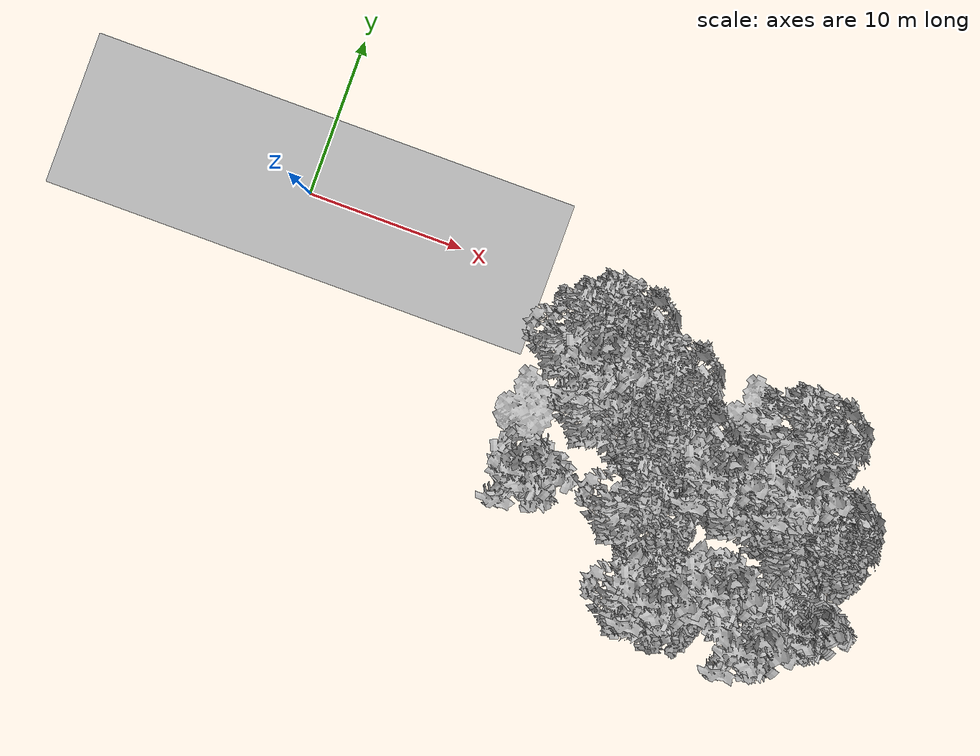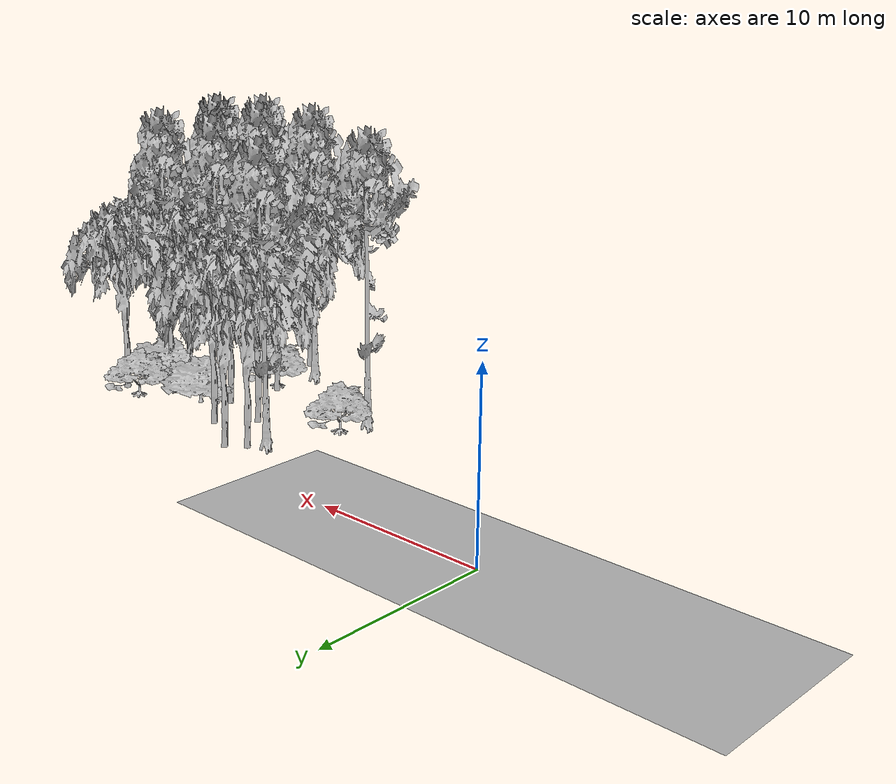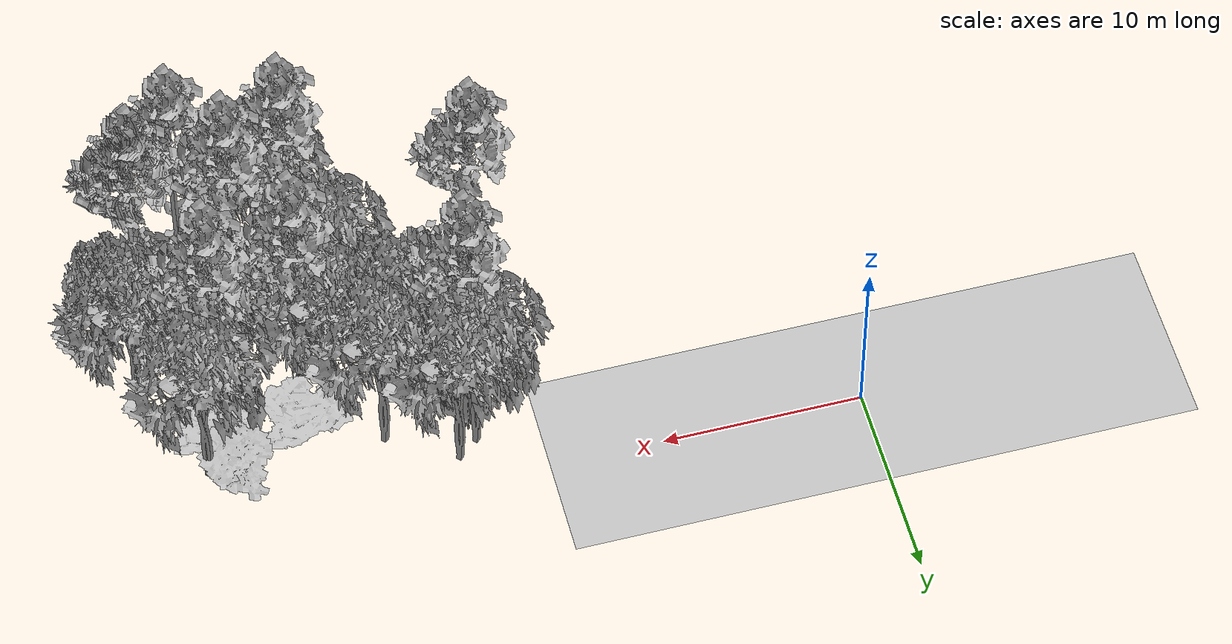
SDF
<sdf version="1.7">
 <world name="default">
  <model name="ground_plane">
   <static>1</static>
   <link name="link">
    <collision name="collision">
     <pose>-50 0 0 0 -0 0</pose>
     <geometry><plane><normal>0 0 1</normal><size>100 100</size></plane></geometry>
     <surface><contact><ode><min_depth>0.01</min_depth><max_vel>0</max_vel></ode></contact></surface>
    </collision>
    <visual name="grass">
     <cast_shadows>0</cast_shadows>
     <geometry>
      <mesh>
       <scale>0.5814285714285714 0.18142857142857144 0.1</scale>
       <uri>file://grass_plane/meshes/grass_plane.dae</uri>
      </mesh>
     </geometry>
    </visual>
   </link>
  </model>
  <model name="Tree 15">
   <static>1</static>
   <pose>32.99031036902194 -12.858967480910888 0 1.57079 -0 0</pose>
   <link name="link">
    <collision name="collision">
     <geometry><mesh><scale>3.5 5 3.5</scale><uri>model://tree_9/meshes/tree_9.obj</uri></mesh></geometry>
    </collision>
    <visual name="visual">
     <geometry><mesh><scale>3.5 5 3.5</scale><uri>model://tree_9/meshes/tree_9.obj</uri></mesh></geometry>
    </visual>
   </link>
  </model>
  <model name="Tree 29">
   <static>1</static>
   <pose>17.025539076455686 -10.248897731775358 0 1.57079 -0 0</pose>
   <link name="link">
    <collision name="collision">
     <geometry><mesh><scale>3.5 5 3.5</scale><uri>model://tree_9/meshes/tree_9.obj</uri></mesh></geometry>
    </collision>
    <visual name="visual">
     <geometry><mesh><scale>3.5 5 3.5</scale><uri>model://tree_9/meshes/tree_9.obj</uri></mesh></geometry>
    </visual>
   </link>
  </model>
  <model name="Tree 42">
   <static>1</static>
   <pose>24.586458142823574 -10.07568651474531 0 1.57079 -0 0</pose>
   <link name="link">
    <collision name="collision">
     <geometry><mesh><scale>3.5 5 3.5</scale><uri>model://tree_2/meshes/tree_2.obj</uri></mesh></geometry>
    </collision>
    <visual name="visual">
     <geometry><mesh><scale>3.5 5 3.5</scale><uri>model://tree_2/meshes/tree_2.obj</uri></mesh></geometry>
    </visual>
   </link>
  </model>
  <model name="Tree 68">
   <static>1</static>
   <pose>22.958480714063455 -3.6892372770026753 0 1.57079 -0 0</pose>
   <link name="link">
    <collision name="collision">
     <geometry><mesh><scale>3.5 5 3.5</scale><uri>model://tree_2/meshes/tree_2.obj</uri></mesh></geometry>
    </collision>
    <visual name="visual">
     <geometry><mesh><scale>3.5 5 3.5</scale><uri>model://tree_2/meshes/tree_2.obj</uri></mesh></geometry>
    </visual>
   </link>
  </model>
  <model name="Tree 70">
   <static>1</static>
   <pose>21.307075548587832 -5.617983215033691 0 1.57079 -0 0</pose>
   <link name="link">
    <collision name="collision">
     <geometry><mesh><scale>3.5 5 3.5</scale><uri>model://tree_2/meshes/tree_2.obj</uri></mesh></geometry>
    </collision>
    <visual name="visual">
     <geometry><mesh><scale>3.5 5 3.5</scale><uri>model://tree_2/meshes/tree_2.obj</uri></mesh></geometry>
    </visual>
   </link>
  </model>
  <model name="Tree 72">
   <static>1</static>
   <pose>26.60149503507195 -14.764750564844793 0 1.57079 -0 0</pose>
   <link name="link">
    <collision name="collision">
     <geometry><mesh><scale>3.5 5 3.5</scale><uri>model://tree_2/meshes/tree_2.obj</uri></mesh></geometry>
    </collision>
    <visual name="visual">
     <geometry><mesh><scale>3.5 5 3.5</scale><uri>model://tree_2/meshes/tree_2.obj</uri></mesh></geometry>
    </visual>
   </link>
  </model>
  <model name="Tree 78">
   <static>1</static>
   <pose>16.857552756799066 -7.826301322635484 0 1.57079 -0 0</pose>
   <link name="link">
    <collision name="collision">
     <geometry><mesh><scale>4 2.5 4</scale><uri>model://tree_1/meshes/tree_1.obj</uri></mesh></geometry>
    </collision>
    <visual name="visual">
     <geometry><mesh><scale>4 2.5 4</scale><uri>model://tree_1/meshes/tree_1.obj</uri></mesh></geometry>
    </visual>
   </link>
  </model>
  <model name="Tree 80">
   <static>1</static>
   <pose>30.657653075249215 -14.694272490432668 0 1.57079 -0 0</pose>
   <link name="link">
    <collision name="collision">
     <geometry><mesh><scale>3.5 5 3.5</scale><uri>model://tree_9/meshes/tree_9.obj</uri></mesh></geometry>
    </collision>
    <visual name="visual">
     <geometry><mesh><scale>3.5 5 3.5</scale><uri>model://tree_9/meshes/tree_9.obj</uri></mesh></geometry>
    </visual>
   </link>
  </model>
  <model name="Tree 86">
   <static>1</static>
   <pose>28.426271946371784 -12.470410275021372 0 1.57079 -0 0</pose>
   <link name="link">
    <collision name="collision">
     <geometry><mesh><scale>3.5 5 3.5</scale><uri>model://tree_9/meshes/tree_9.obj</uri></mesh></geometry>
    </collision>
    <visual name="visual">
     <geometry><mesh><scale>3.5 5 3.5</scale><uri>model://tree_9/meshes/tree_9.obj</uri></mesh></geometry>
    </visual>
   </link>
  </model>
  <model name="Tree 113">
   <static>1</static>
   <pose>33.92952750416178 -8.393287061765783 0 1.57079 -0 0</pose>
   <link name="link">
    <collision name="collision">
     <geometry><mesh><scale>3.5 5 3.5</scale><uri>model://tree_2/meshes/tree_2.obj</uri></mesh></geometry>
    </collision>
    <visual name="visual">
     <geometry><mesh><scale>3.5 5 3.5</scale><uri>model://tree_2/meshes/tree_2.obj</uri></mesh></geometry>
    </visual>
   </link>
  </model>
  <model name="Tree 116">
   <static>1</static>
   <pose>24.857501739719567 -6.556314997574528 0 1.57079 -0 0</pose>
   <link name="link">
    <collision name="collision">
     <geometry><mesh><scale>3.5 5 3.5</scale><uri>model://tree_2/meshes/tree_2.obj</uri></mesh></geometry>
    </collision>
    <visual name="visual">
     <geometry><mesh><scale>3.5 5 3.5</scale><uri>model://tree_2/meshes/tree_2.obj</uri></mesh></geometry>
    </visual>
   </link>
  </model>
  <model name="Tree 124">
   <static>1</static>
   <pose>30.260906636792598 -7.725980265467234 0 1.57079 -0 0</pose>
   <link name="link">
    <collision name="collision">
     <geometry><mesh><scale>3.5 5 3.5</scale><uri>model://tree_2/meshes/tree_2.obj</uri></mesh></geometry>
    </collision>
    <visual name="visual">
     <geometry><mesh><scale>3.5 5 3.5</scale><uri>model://tree_2/meshes/tree_2.obj</uri></mesh></geometry>
    </visual>
   </link>
  </model>
  <model name="Tree 132">
   <static>1</static>
   <pose>31.05764530852707 -6.382612291707616 0 1.57079 -0 0</pose>
   <link name="link">
    <collision name="collision">
     <geometry><mesh><scale>3 2 3</scale><uri>model://tree_3/meshes/tree_3.obj</uri></mesh></geometry>
    </collision>
    <visual name="visual">
     <geometry><mesh><scale>3 2 3</scale><uri>model://tree_3/meshes/tree_3.obj</uri></mesh></geometry>
    </visual>
   </link>
  </model>
  <model name="Tree 146">
   <static>1</static>
   <pose>25.25601575110325 -10.617370271039839 0 1.57079 -0 0</pose>
   <link name="link">
    <collision name="collision">
     <geometry><mesh><scale>4 2.5 4</scale><uri>model://tree_1/meshes/tree_1.obj</uri></mesh></geometry>
    </collision>
    <visual name="visual">
     <geometry><mesh><scale>4 2.5 4</scale><uri>model://tree_1/meshes/tree_1.obj</uri></mesh></geometry>
    </visual>
   </link>
  </model>
  <model name="Tree 157">
   <static>1</static>
   <pose>25.42692789547347 -14.001678038859268 0 1.57079 -0 0</pose>
   <link name="link">
    <collision name="collision">
     <geometry><mesh><scale>3.5 5 3.5</scale><uri>model://tree_9/meshes/tree_9.obj</uri></mesh></geometry>
    </collision>
    <visual name="visual">
     <geometry><mesh><scale>3.5 5 3.5</scale><uri>model://tree_9/meshes/tree_9.obj</uri></mesh></geometry>
    </visual>
   </link>
  </model>
  <model name="Tree 158">
   <static>1</static>
   <pose>30.610736908104485 -6.527508034286463 0 1.57079 -0 0</pose>
   <link name="link">
    <collision name="collision">
     <geometry><mesh><scale>3.5 5 3.5</scale><uri>model://tree_9/meshes/tree_9.obj</uri></mesh></geometry>
    </collision>
    <visual name="visual">
     <geometry><mesh><scale>3.5 5 3.5</scale><uri>model://tree_9/meshes/tree_9.obj</uri></mesh></geometry>
    </visual>
   </link>
  </model>
  <model name="Tree 161">
   <static>1</static>
   <pose>18.818499576998548 -3.946568357578716 0 1.57079 -0 0</pose>
   <link name="link">
    <collision name="collision">
     <geometry><mesh><scale>3.5 5 3.5</scale><uri>model://tree_9/meshes/tree_9.obj</uri></mesh></geometry>
    </collision>
    <visual name="visual">
     <geometry><mesh><scale>3.5 5 3.5</scale><uri>model://tree_9/meshes/tree_9.obj</uri></mesh></geometry>
    </visual>
   </link>
  </model>
  <model name="Tree 180">
   <static>1</static>
   <pose>18.673477747850455 -2.5115957191651006 0 1.57079 -0 0</pose>
   <link name="link">
    <collision name="collision">
     <geometry><mesh><scale>3.5 5 3.5</scale><uri>model://tree_2/meshes/tree_2.obj</uri></mesh></geometry>
    </collision>
    <visual name="visual">
     <geometry><mesh><scale>3.5 5 3.5</scale><uri>model://tree_2/meshes/tree_2.obj</uri></mesh></geometry>
    </visual>
   </link>
  </model>
  <model name="Tree 213">
   <static>1</static>
   <pose>26.4207236500677 -7.135309716715211 0 1.57079 -0 0</pose>
   <link name="link">
    <collision name="collision">
     <geometry><mesh><scale>3.5 5 3.5</scale><uri>model://tree_9/meshes/tree_9.obj</uri></mesh></geometry>
    </collision>
    <visual name="visual">
     <geometry><mesh><scale>3.5 5 3.5</scale><uri>model://tree_9/meshes/tree_9.obj</uri></mesh></geometry>
    </visual>
   </link>
  </model>
  <model name="Tree 223">
   <static>1</static>
   <pose>34.05404545648767 -8.95939640268105 0 1.57079 -0 0</pose>
   <link name="link">
    <collision name="collision">
     <geometry><mesh><scale>3.5 5 3.5</scale><uri>model://tree_2/meshes/tree_2.obj</uri></mesh></geometry>
    </collision>
    <visual name="visual">
     <geometry><mesh><scale>3.5 5 3.5</scale><uri>model://tree_2/meshes/tree_2.obj</uri></mesh></geometry>
    </visual>
   </link>
  </model>
  <model name="Tree 232">
   <static>1</static>
   <pose>19.6826654396026 -1.7181253011541706 0 1.57079 -0 0</pose>
   <link name="link">
    <collision name="collision">
     <geometry><mesh><scale>3.5 5 3.5</scale><uri>model://tree_2/meshes/tree_2.obj</uri></mesh></geometry>
    </collision>
    <visual name="visual">
     <geometry><mesh><scale>3.5 5 3.5</scale><uri>model://tree_2/meshes/tree_2.obj</uri></mesh></geometry>
    </visual>
   </link>
  </model>
  <model name="Tree 276">
   <static>1</static>
   <pose>32.86444989047365 -12.801325361240606 0 1.57079 -0 0</pose>
   <link name="link">
    <collision name="collision">
     <geometry><mesh><scale>3.5 5 3.5</scale><uri>model://tree_9/meshes/tree_9.obj</uri></mesh></geometry>
    </collision>
    <visual name="visual">
     <geometry><mesh><scale>3.5 5 3.5</scale><uri>model://tree_9/meshes/tree_9.obj</uri></mesh></geometry>
    </visual>
   </link>
  </model>
  <model name="Tree 280">
   <static>1</static>
   <pose>26.57888189815513 -5.523528793529138 0 1.57079 -0 0</pose>
   <link name="link">
    <collision name="collision">
     <geometry><mesh><scale>3 2 3</scale><uri>model://tree_3/meshes/tree_3.obj</uri></mesh></geometry>
    </collision>
    <visual name="visual">
     <geometry><mesh><scale>3 2 3</scale><uri>model://tree_3/meshes/tree_3.obj</uri></mesh></geometry>
    </visual>
   </link>
  </model>
  <model name="Tree 287">
   <static>1</static>
   <pose>31.63971105120679 -3.925524738224059 0 1.57079 -0 0</pose>
   <link name="link">
    <collision name="collision">
     <geometry><mesh><scale>3.5 5 3.5</scale><uri>model://tree_2/meshes/tree_2.obj</uri></mesh></geometry>
    </collision>
    <visual name="visual">
     <geometry><mesh><scale>3.5 5 3.5</scale><uri>model://tree_2/meshes/tree_2.obj</uri></mesh></geometry>
    </visual>
   </link>
  </model>
  <model name="Tree 297">
   <static>1</static>
   <pose>30.186620726514505 -3.6182927247920134 0 1.57079 -0 0</pose>
   <link name="link">
    <collision name="collision">
     <geometry><mesh><scale>4 2.5 4</scale><uri>model://tree_1/meshes/tree_1.obj</uri></mesh></geometry>
    </collision>
    <visual name="visual">
     <geometry><mesh><scale>4 2.5 4</scale><uri>model://tree_1/meshes/tree_1.obj</uri></mesh></geometry>
    </visual>
   </link>
  </model>
 </world>
</sdf>
